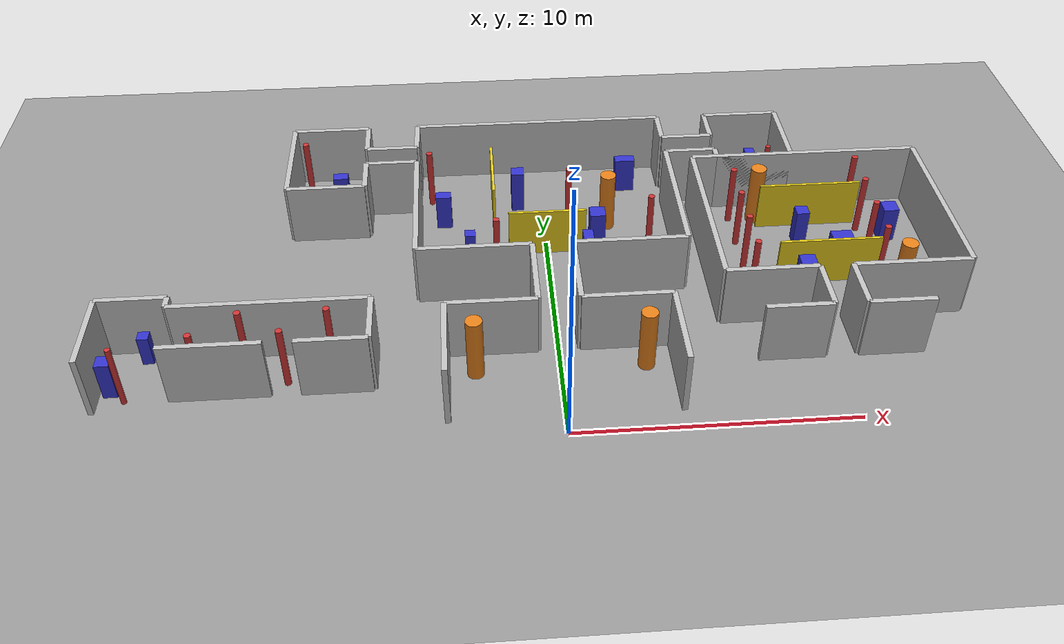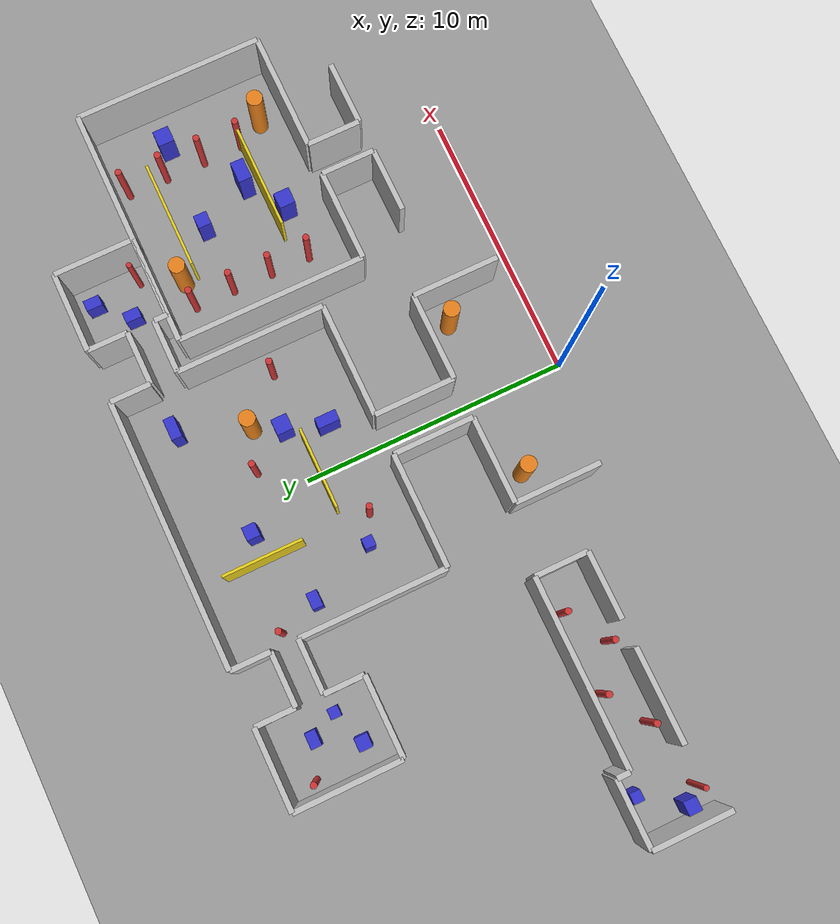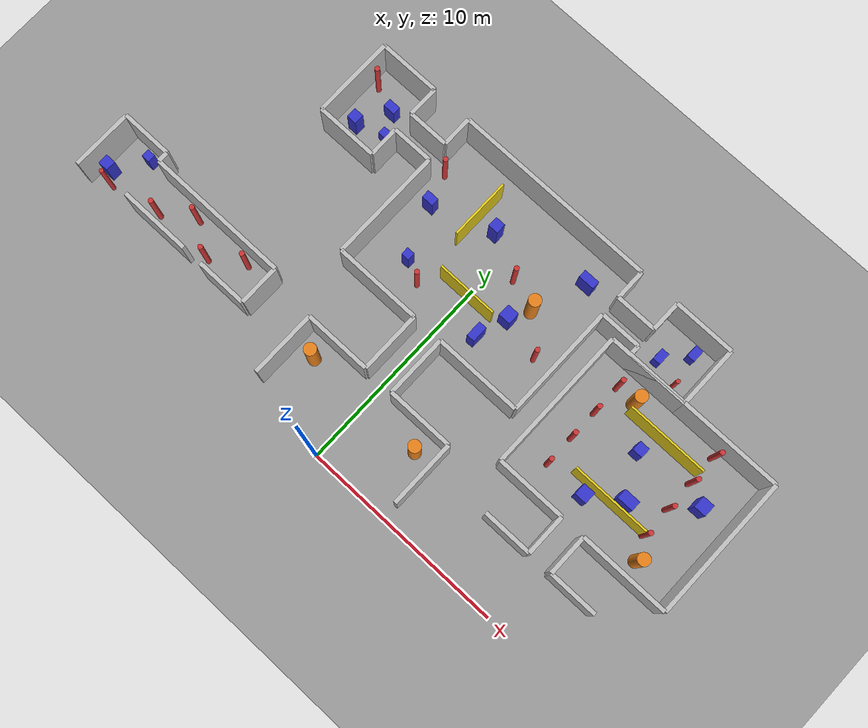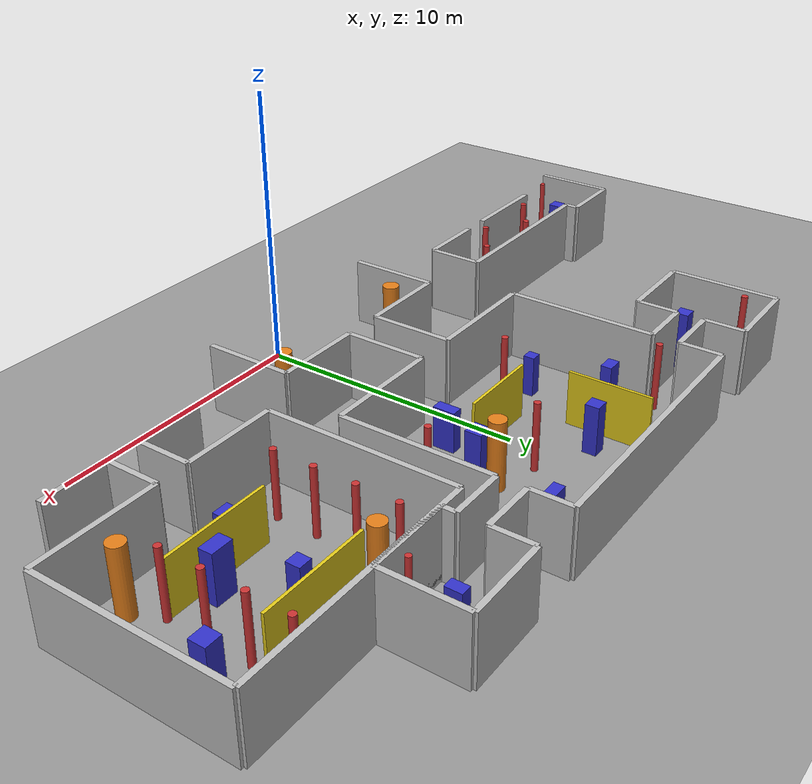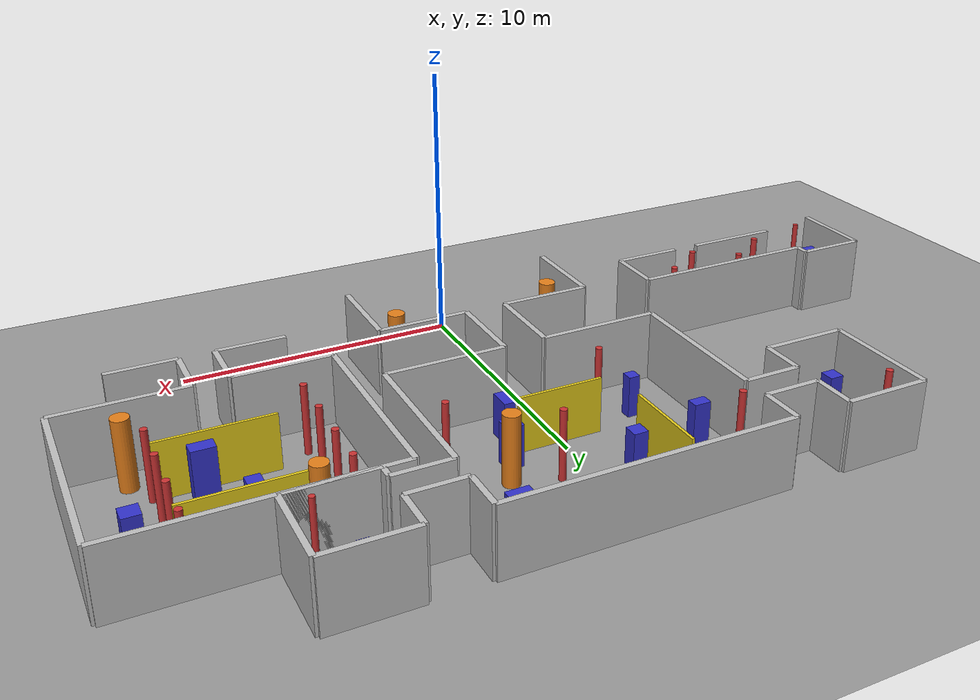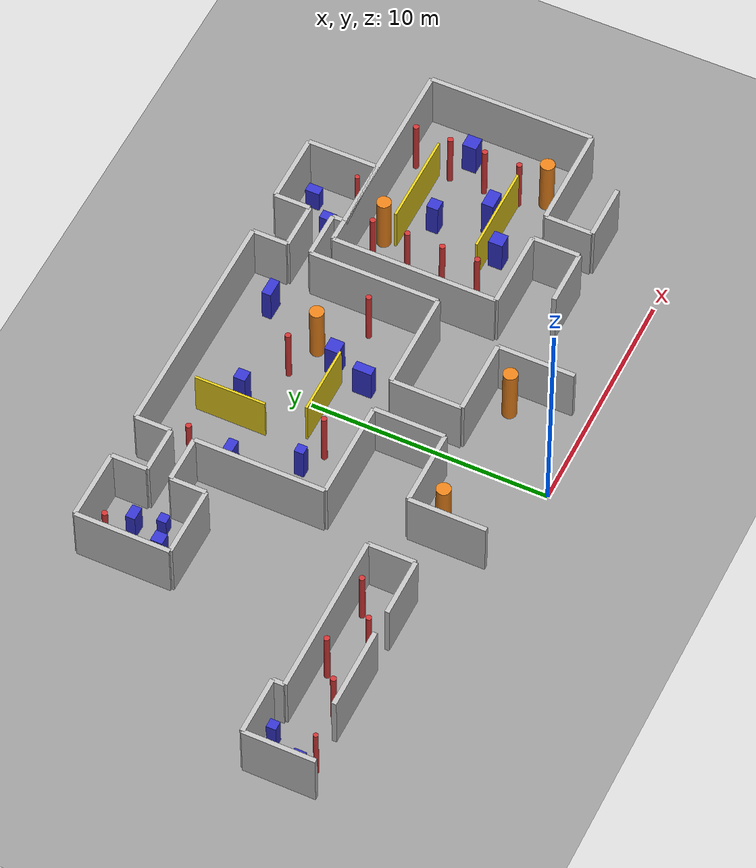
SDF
<sdf version="1.7">
 <world name="commercial_building">
  <model name="ground_plane">
   <static>true</static>
   <link name="link">
    <collision name="collision">
     <geometry><plane><normal>0 0 1</normal><size>50 50</size></plane></geometry>
     <surface><friction><ode><mu>1</mu><mu2>1</mu2></ode></friction></surface>
    </collision>
    <visual name="visual">
     <geometry><plane><normal>0 0 1</normal><size>50 50</size></plane></geometry>
     <material><ambient>0.6 0.6 0.6 1</ambient><diffuse>0.6 0.6 0.6 1</diffuse></material>
    </visual>
   </link>
  </model>
  <model name="wall_hub_n_left">
   <static>true</static>
   <pose>-2.375 4 1.25 0 0 0</pose>
   <link name="link">
    <collision name="c"><geometry><box><size>3.25 0.2 2.5</size></box></geometry></collision>
    <visual name="v">
     <geometry><box><size>3.25 0.2 2.5</size></box></geometry>
     <material><ambient>0.75 0.75 0.75 1</ambient><diffuse>0.75 0.75 0.75 1</diffuse></material>
    </visual>
   </link>
  </model>
  <model name="wall_hub_n_right">
   <static>true</static>
   <pose>2.375 4 1.25 0 0 0</pose>
   <link name="link">
    <collision name="c"><geometry><box><size>3.25 0.2 2.5</size></box></geometry></collision>
    <visual name="v">
     <geometry><box><size>3.25 0.2 2.5</size></box></geometry>
     <material><ambient>0.75 0.75 0.75 1</ambient><diffuse>0.75 0.75 0.75 1</diffuse></material>
    </visual>
   </link>
  </model>
  <model name="wall_hub_e_top">
   <static>true</static>
   <pose>4 2.375 1.25 0 0 0</pose>
   <link name="link">
    <collision name="c"><geometry><box><size>0.2 3.25 2.5</size></box></geometry></collision>
    <visual name="v">
     <geometry><box><size>0.2 3.25 2.5</size></box></geometry>
     <material><ambient>0.75 0.75 0.75 1</ambient><diffuse>0.75 0.75 0.75 1</diffuse></material>
    </visual>
   </link>
  </model>
  <model name="wall_hub_w_top">
   <static>true</static>
   <pose>-4 2.375 1.25 0 0 0</pose>
   <link name="link">
    <collision name="c"><geometry><box><size>0.2 3.25 2.5</size></box></geometry></collision>
    <visual name="v">
     <geometry><box><size>0.2 3.25 2.5</size></box></geometry>
     <material><ambient>0.75 0.75 0.75 1</ambient><diffuse>0.75 0.75 0.75 1</diffuse></material>
    </visual>
   </link>
  </model>
  <model name="wall_nhall_west">
   <static>true</static>
   <pose>-0.75 5.5 1.25 0 0 0</pose>
   <link name="link">
    <collision name="c"><geometry><box><size>0.2 3.0 2.5</size></box></geometry></collision>
    <visual name="v">
     <geometry><box><size>0.2 3.0 2.5</size></box></geometry>
     <material><ambient>0.75 0.75 0.75 1</ambient><diffuse>0.75 0.75 0.75 1</diffuse></material>
    </visual>
   </link>
  </model>
  <model name="wall_nhall_east">
   <static>true</static>
   <pose>0.75 5.5 1.25 0 0 0</pose>
   <link name="link">
    <collision name="c"><geometry><box><size>0.2 3.0 2.5</size></box></geometry></collision>
    <visual name="v">
     <geometry><box><size>0.2 3.0 2.5</size></box></geometry>
     <material><ambient>0.75 0.75 0.75 1</ambient><diffuse>0.75 0.75 0.75 1</diffuse></material>
    </visual>
   </link>
  </model>
  <model name="wall_A_s_left">
   <static>true</static>
   <pose>-2.875 7 1.25 0 0 0</pose>
   <link name="link">
    <collision name="c"><geometry><box><size>4.25 0.2 2.5</size></box></geometry></collision>
    <visual name="v">
     <geometry><box><size>4.25 0.2 2.5</size></box></geometry>
     <material><ambient>0.75 0.75 0.75 1</ambient><diffuse>0.75 0.75 0.75 1</diffuse></material>
    </visual>
   </link>
  </model>
  <model name="wall_A_s_right">
   <static>true</static>
   <pose>2.875 7 1.25 0 0 0</pose>
   <link name="link">
    <collision name="c"><geometry><box><size>4.25 0.2 2.5</size></box></geometry></collision>
    <visual name="v">
     <geometry><box><size>4.25 0.2 2.5</size></box></geometry>
     <material><ambient>0.75 0.75 0.75 1</ambient><diffuse>0.75 0.75 0.75 1</diffuse></material>
    </visual>
   </link>
  </model>
  <model name="wall_A_n">
   <static>true</static>
   <pose>0 15 1.25 0 0 0</pose>
   <link name="link">
    <collision name="c"><geometry><box><size>10.0 0.2 2.5</size></box></geometry></collision>
    <visual name="v">
     <geometry><box><size>10.0 0.2 2.5</size></box></geometry>
     <material><ambient>0.75 0.75 0.75 1</ambient><diffuse>0.75 0.75 0.75 1</diffuse></material>
    </visual>
   </link>
  </model>
  <model name="wall_A_e_bot">
   <static>true</static>
   <pose>5 9.75 1.25 0 0 0</pose>
   <link name="link">
    <collision name="c"><geometry><box><size>0.2 5.5 2.5</size></box></geometry></collision>
    <visual name="v">
     <geometry><box><size>0.2 5.5 2.5</size></box></geometry>
     <material><ambient>0.75 0.75 0.75 1</ambient><diffuse>0.75 0.75 0.75 1</diffuse></material>
    </visual>
   </link>
  </model>
  <model name="wall_A_e_top">
   <static>true</static>
   <pose>5 14.25 1.25 0 0 0</pose>
   <link name="link">
    <collision name="c"><geometry><box><size>0.2 1.5 2.5</size></box></geometry></collision>
    <visual name="v">
     <geometry><box><size>0.2 1.5 2.5</size></box></geometry>
     <material><ambient>0.75 0.75 0.75 1</ambient><diffuse>0.75 0.75 0.75 1</diffuse></material>
    </visual>
   </link>
  </model>
  <model name="wall_A_w_bot">
   <static>true</static>
   <pose>-5 9.75 1.25 0 0 0</pose>
   <link name="link">
    <collision name="c"><geometry><box><size>0.2 5.5 2.5</size></box></geometry></collision>
    <visual name="v">
     <geometry><box><size>0.2 5.5 2.5</size></box></geometry>
     <material><ambient>0.75 0.75 0.75 1</ambient><diffuse>0.75 0.75 0.75 1</diffuse></material>
    </visual>
   </link>
  </model>
  <model name="wall_A_w_top">
   <static>true</static>
   <pose>-5 14.25 1.25 0 0 0</pose>
   <link name="link">
    <collision name="c"><geometry><box><size>0.2 1.5 2.5</size></box></geometry></collision>
    <visual name="v">
     <geometry><box><size>0.2 1.5 2.5</size></box></geometry>
     <material><ambient>0.75 0.75 0.75 1</ambient><diffuse>0.75 0.75 0.75 1</diffuse></material>
    </visual>
   </link>
  </model>
  <model name="wall_Bhall_s">
   <static>true</static>
   <pose>6 12.5 1.25 0 0 0</pose>
   <link name="link">
    <collision name="c"><geometry><box><size>2.0 0.2 2.5</size></box></geometry></collision>
    <visual name="v">
     <geometry><box><size>2.0 0.2 2.5</size></box></geometry>
     <material><ambient>0.75 0.75 0.75 1</ambient><diffuse>0.75 0.75 0.75 1</diffuse></material>
    </visual>
   </link>
  </model>
  <model name="wall_Bhall_n">
   <static>true</static>
   <pose>6 13.5 1.25 0 0 0</pose>
   <link name="link">
    <collision name="c"><geometry><box><size>2.0 0.2 2.5</size></box></geometry></collision>
    <visual name="v">
     <geometry><box><size>2.0 0.2 2.5</size></box></geometry>
     <material><ambient>0.75 0.75 0.75 1</ambient><diffuse>0.75 0.75 0.75 1</diffuse></material>
    </visual>
   </link>
  </model>
  <model name="wall_B_w_bot">
   <static>true</static>
   <pose>7 12.25 1.25 0 0 0</pose>
   <link name="link">
    <collision name="c"><geometry><box><size>0.2 0.5 2.5</size></box></geometry></collision>
    <visual name="v">
     <geometry><box><size>0.2 0.5 2.5</size></box></geometry>
     <material><ambient>0.75 0.75 0.75 1</ambient><diffuse>0.75 0.75 0.75 1</diffuse></material>
    </visual>
   </link>
  </model>
  <model name="wall_B_w_top">
   <static>true</static>
   <pose>7 14.25 1.25 0 0 0</pose>
   <link name="link">
    <collision name="c"><geometry><box><size>0.2 1.5 2.5</size></box></geometry></collision>
    <visual name="v">
     <geometry><box><size>0.2 1.5 2.5</size></box></geometry>
     <material><ambient>0.75 0.75 0.75 1</ambient><diffuse>0.75 0.75 0.75 1</diffuse></material>
    </visual>
   </link>
  </model>
  <model name="wall_B_e">
   <static>true</static>
   <pose>10 13.5 1.25 0 0 0</pose>
   <link name="link">
    <collision name="c"><geometry><box><size>0.2 3.0 2.5</size></box></geometry></collision>
    <visual name="v">
     <geometry><box><size>0.2 3.0 2.5</size></box></geometry>
     <material><ambient>0.75 0.75 0.75 1</ambient><diffuse>0.75 0.75 0.75 1</diffuse></material>
    </visual>
   </link>
  </model>
  <model name="wall_B_s">
   <static>true</static>
   <pose>8.5 12 1.25 0 0 0</pose>
   <link name="link">
    <collision name="c"><geometry><box><size>3.0 0.2 2.5</size></box></geometry></collision>
    <visual name="v">
     <geometry><box><size>3.0 0.2 2.5</size></box></geometry>
     <material><ambient>0.75 0.75 0.75 1</ambient><diffuse>0.75 0.75 0.75 1</diffuse></material>
    </visual>
   </link>
  </model>
  <model name="wall_B_n">
   <static>true</static>
   <pose>8.5 15 1.25 0 0 0</pose>
   <link name="link">
    <collision name="c"><geometry><box><size>3.0 0.2 2.5</size></box></geometry></collision>
    <visual name="v">
     <geometry><box><size>3.0 0.2 2.5</size></box></geometry>
     <material><ambient>0.75 0.75 0.75 1</ambient><diffuse>0.75 0.75 0.75 1</diffuse></material>
    </visual>
   </link>
  </model>
  <model name="wall_Chall_s">
   <static>true</static>
   <pose>-6 12.5 1.25 0 0 0</pose>
   <link name="link">
    <collision name="c"><geometry><box><size>2.0 0.2 2.5</size></box></geometry></collision>
    <visual name="v">
     <geometry><box><size>2.0 0.2 2.5</size></box></geometry>
     <material><ambient>0.75 0.75 0.75 1</ambient><diffuse>0.75 0.75 0.75 1</diffuse></material>
    </visual>
   </link>
  </model>
  <model name="wall_Chall_n">
   <static>true</static>
   <pose>-6 13.5 1.25 0 0 0</pose>
   <link name="link">
    <collision name="c"><geometry><box><size>2.0 0.2 2.5</size></box></geometry></collision>
    <visual name="v">
     <geometry><box><size>2.0 0.2 2.5</size></box></geometry>
     <material><ambient>0.75 0.75 0.75 1</ambient><diffuse>0.75 0.75 0.75 1</diffuse></material>
    </visual>
   </link>
  </model>
  <model name="wall_C_e_bot">
   <static>true</static>
   <pose>-7 11.75 1.25 0 0 0</pose>
   <link name="link">
    <collision name="c"><geometry><box><size>0.2 1.5 2.5</size></box></geometry></collision>
    <visual name="v">
     <geometry><box><size>0.2 1.5 2.5</size></box></geometry>
     <material><ambient>0.75 0.75 0.75 1</ambient><diffuse>0.75 0.75 0.75 1</diffuse></material>
    </visual>
   </link>
  </model>
  <model name="wall_C_e_top">
   <static>true</static>
   <pose>-7 14.25 1.25 0 0 0</pose>
   <link name="link">
    <collision name="c"><geometry><box><size>0.2 1.5 2.5</size></box></geometry></collision>
    <visual name="v">
     <geometry><box><size>0.2 1.5 2.5</size></box></geometry>
     <material><ambient>0.75 0.75 0.75 1</ambient><diffuse>0.75 0.75 0.75 1</diffuse></material>
    </visual>
   </link>
  </model>
  <model name="wall_C_w">
   <static>true</static>
   <pose>-10 13 1.25 0 0 0</pose>
   <link name="link">
    <collision name="c"><geometry><box><size>0.2 4.0 2.5</size></box></geometry></collision>
    <visual name="v">
     <geometry><box><size>0.2 4.0 2.5</size></box></geometry>
     <material><ambient>0.75 0.75 0.75 1</ambient><diffuse>0.75 0.75 0.75 1</diffuse></material>
    </visual>
   </link>
  </model>
  <model name="wall_C_s">
   <static>true</static>
   <pose>-8.5 11 1.25 0 0 0</pose>
   <link name="link">
    <collision name="c"><geometry><box><size>3.0 0.2 2.5</size></box></geometry></collision>
    <visual name="v">
     <geometry><box><size>3.0 0.2 2.5</size></box></geometry>
     <material><ambient>0.75 0.75 0.75 1</ambient><diffuse>0.75 0.75 0.75 1</diffuse></material>
    </visual>
   </link>
  </model>
  <model name="wall_C_n">
   <static>true</static>
   <pose>-8.5 15 1.25 0 0 0</pose>
   <link name="link">
    <collision name="c"><geometry><box><size>3.0 0.2 2.5</size></box></geometry></collision>
    <visual name="v">
     <geometry><box><size>3.0 0.2 2.5</size></box></geometry>
     <material><ambient>0.75 0.75 0.75 1</ambient><diffuse>0.75 0.75 0.75 1</diffuse></material>
    </visual>
   </link>
  </model>
  <model name="wall_G_n_left">
   <static>true</static>
   <pose>8.2 3 1.25 0 0 0</pose>
   <link name="link">
    <collision name="c"><geometry><box><size>2.4 0.2 2.5</size></box></geometry></collision>
    <visual name="v">
     <geometry><box><size>2.4 0.2 2.5</size></box></geometry>
     <material><ambient>0.75 0.75 0.75 1</ambient><diffuse>0.75 0.75 0.75 1</diffuse></material>
    </visual>
   </link>
  </model>
  <model name="wall_G_n_right">
   <static>true</static>
   <pose>11.8 3 1.25 0 0 0</pose>
   <link name="link">
    <collision name="c"><geometry><box><size>2.4 0.2 2.5</size></box></geometry></collision>
    <visual name="v">
     <geometry><box><size>2.4 0.2 2.5</size></box></geometry>
     <material><ambient>0.75 0.75 0.75 1</ambient><diffuse>0.75 0.75 0.75 1</diffuse></material>
    </visual>
   </link>
  </model>
  <model name="wall_Ihall_w">
   <static>true</static>
   <pose>9.4 4 1.25 0 0 0</pose>
   <link name="link">
    <collision name="c"><geometry><box><size>0.2 2.0 2.5</size></box></geometry></collision>
    <visual name="v">
     <geometry><box><size>0.2 2.0 2.5</size></box></geometry>
     <material><ambient>0.75 0.75 0.75 1</ambient><diffuse>0.75 0.75 0.75 1</diffuse></material>
    </visual>
   </link>
  </model>
  <model name="wall_Ihall_e">
   <static>true</static>
   <pose>10.6 4 1.25 0 0 0</pose>
   <link name="link">
    <collision name="c"><geometry><box><size>0.2 2.0 2.5</size></box></geometry></collision>
    <visual name="v">
     <geometry><box><size>0.2 2.0 2.5</size></box></geometry>
     <material><ambient>0.75 0.75 0.75 1</ambient><diffuse>0.75 0.75 0.75 1</diffuse></material>
    </visual>
   </link>
  </model>
  <model name="wall_I_s_left">
   <static>true</static>
   <pose>7.7 5 1.25 0 0 0</pose>
   <link name="link">
    <collision name="c"><geometry><box><size>3.4 0.2 2.5</size></box></geometry></collision>
    <visual name="v">
     <geometry><box><size>3.4 0.2 2.5</size></box></geometry>
     <material><ambient>0.75 0.75 0.75 1</ambient><diffuse>0.75 0.75 0.75 1</diffuse></material>
    </visual>
   </link>
  </model>
  <model name="wall_I_s_right">
   <static>true</static>
   <pose>12.8 5 1.25 0 0 0</pose>
   <link name="link">
    <collision name="c"><geometry><box><size>4.4 0.2 2.5</size></box></geometry></collision>
    <visual name="v">
     <geometry><box><size>4.4 0.2 2.5</size></box></geometry>
     <material><ambient>0.75 0.75 0.75 1</ambient><diffuse>0.75 0.75 0.75 1</diffuse></material>
    </visual>
   </link>
  </model>
  <model name="wall_I_n">
   <static>true</static>
   <pose>10.5 12 1.25 0 0 0</pose>
   <link name="link">
    <collision name="c"><geometry><box><size>9.0 0.2 2.5</size></box></geometry></collision>
    <visual name="v">
     <geometry><box><size>9.0 0.2 2.5</size></box></geometry>
     <material><ambient>0.75 0.75 0.75 1</ambient><diffuse>0.75 0.75 0.75 1</diffuse></material>
    </visual>
   </link>
  </model>
  <model name="wall_I_e">
   <static>true</static>
   <pose>15 8.5 1.25 0 0 0</pose>
   <link name="link">
    <collision name="c"><geometry><box><size>0.2 7.0 2.5</size></box></geometry></collision>
    <visual name="v">
     <geometry><box><size>0.2 7.0 2.5</size></box></geometry>
     <material><ambient>0.75 0.75 0.75 1</ambient><diffuse>0.75 0.75 0.75 1</diffuse></material>
    </visual>
   </link>
  </model>
  <model name="wall_I_w">
   <static>true</static>
   <pose>6 8.5 1.25 0 0 0</pose>
   <link name="link">
    <collision name="c"><geometry><box><size>0.2 7.0 2.5</size></box></geometry></collision>
    <visual name="v">
     <geometry><box><size>0.2 7.0 2.5</size></box></geometry>
     <material><ambient>0.75 0.75 0.75 1</ambient><diffuse>0.75 0.75 0.75 1</diffuse></material>
    </visual>
   </link>
  </model>
  <model name="wall_JK_s_left">
   <static>true</static>
   <pose>-11.75 2.5 1.25 0 0 0</pose>
   <link name="link">
    <collision name="c"><geometry><box><size>3.5 0.2 2.5</size></box></geometry></collision>
    <visual name="v">
     <geometry><box><size>3.5 0.2 2.5</size></box></geometry>
     <material><ambient>0.75 0.75 0.75 1</ambient><diffuse>0.75 0.75 0.75 1</diffuse></material>
    </visual>
   </link>
  </model>
  <model name="wall_JK_s_right">
   <static>true</static>
   <pose>-7.75 2.5 1.25 0 0 0</pose>
   <link name="link">
    <collision name="c"><geometry><box><size>2.5 0.2 2.5</size></box></geometry></collision>
    <visual name="v">
     <geometry><box><size>2.5 0.2 2.5</size></box></geometry>
     <material><ambient>0.75 0.75 0.75 1</ambient><diffuse>0.75 0.75 0.75 1</diffuse></material>
    </visual>
   </link>
  </model>
  <model name="wall_K_n">
   <static>true</static>
   <pose>-10 4.5 1.25 0 0 0</pose>
   <link name="link">
    <collision name="c"><geometry><box><size>7.0 0.2 2.5</size></box></geometry></collision>
    <visual name="v">
     <geometry><box><size>7.0 0.2 2.5</size></box></geometry>
     <material><ambient>0.75 0.75 0.75 1</ambient><diffuse>0.75 0.75 0.75 1</diffuse></material>
    </visual>
   </link>
  </model>
  <model name="wall_K_e">
   <static>true</static>
   <pose>-6.5 3.5 1.25 0 0 0</pose>
   <link name="link">
    <collision name="c"><geometry><box><size>0.2 2.0 2.5</size></box></geometry></collision>
    <visual name="v">
     <geometry><box><size>0.2 2.0 2.5</size></box></geometry>
     <material><ambient>0.75 0.75 0.75 1</ambient><diffuse>0.75 0.75 0.75 1</diffuse></material>
    </visual>
   </link>
  </model>
  <model name="wall_L_e_top">
   <static>true</static>
   <pose>-13.5 4.75 1.25 0 0 0</pose>
   <link name="link">
    <collision name="c"><geometry><box><size>0.2 0.5 2.5</size></box></geometry></collision>
    <visual name="v">
     <geometry><box><size>0.2 0.5 2.5</size></box></geometry>
     <material><ambient>0.75 0.75 0.75 1</ambient><diffuse>0.75 0.75 0.75 1</diffuse></material>
    </visual>
   </link>
  </model>
  <model name="wall_L_w">
   <static>true</static>
   <pose>-16 3.5 1.25 0 0 0</pose>
   <link name="link">
    <collision name="c"><geometry><box><size>0.2 3.0 2.5</size></box></geometry></collision>
    <visual name="v">
     <geometry><box><size>0.2 3.0 2.5</size></box></geometry>
     <material><ambient>0.75 0.75 0.75 1</ambient><diffuse>0.75 0.75 0.75 1</diffuse></material>
    </visual>
   </link>
  </model>
  <model name="wall_L_n">
   <static>true</static>
   <pose>-14.75 5.0 1.25 0 0 0</pose>
   <link name="link">
    <collision name="c"><geometry><box><size>2.5 0.2 2.5</size></box></geometry></collision>
    <visual name="v">
     <geometry><box><size>2.5 0.2 2.5</size></box></geometry>
     <material><ambient>0.75 0.75 0.75 1</ambient><diffuse>0.75 0.75 0.75 1</diffuse></material>
    </visual>
   </link>
  </model>
  <model name="obs_hub_post_ne">
   <static>true</static>
   <pose>3 3 1.25 0 0 0</pose>
   <link name="link">
    <collision name="c">
     <geometry><cylinder><radius>0.3</radius><length>2.5</length></cylinder></geometry>
    </collision>
    <visual name="v">
     <geometry><cylinder><radius>0.3</radius><length>2.5</length></cylinder></geometry>
     <material><ambient>0.9 0.5 0.1 1</ambient><diffuse>0.9 0.5 0.1 1</diffuse></material>
    </visual>
   </link>
  </model>
  <model name="obs_hub_post_nw">
   <static>true</static>
   <pose>-3 3 1.25 0 0 0</pose>
   <link name="link">
    <collision name="c">
     <geometry><cylinder><radius>0.3</radius><length>2.5</length></cylinder></geometry>
    </collision>
    <visual name="v">
     <geometry><cylinder><radius>0.3</radius><length>2.5</length></cylinder></geometry>
     <material><ambient>0.9 0.5 0.1 1</ambient><diffuse>0.9 0.5 0.1 1</diffuse></material>
    </visual>
   </link>
  </model>
  <model name="obs_A_box1">
   <static>true</static>
   <pose>-3 9 0.75 0 0 0</pose>
   <link name="link">
    <collision name="c"><geometry><box><size>0.4 0.4 1.5</size></box></geometry></collision>
    <visual name="v">
     <geometry><box><size>0.4 0.4 1.5</size></box></geometry>
     <material><ambient>0.2 0.2 0.8 1</ambient><diffuse>0.2 0.2 0.8 1</diffuse></material>
    </visual>
   </link>
  </model>
  <model name="obs_A_box2">
   <static>true</static>
   <pose>2 10 0.75 0 0 0</pose>
   <link name="link">
    <collision name="c"><geometry><box><size>0.6 0.6 1.5</size></box></geometry></collision>
    <visual name="v">
     <geometry><box><size>0.6 0.6 1.5</size></box></geometry>
     <material><ambient>0.2 0.2 0.8 1</ambient><diffuse>0.2 0.2 0.8 1</diffuse></material>
    </visual>
   </link>
  </model>
  <model name="obs_A_box3">
   <static>true</static>
   <pose>-1 12.5 0.9 0 0 0</pose>
   <link name="link">
    <collision name="c"><geometry><box><size>0.5 0.5 1.8</size></box></geometry></collision>
    <visual name="v">
     <geometry><box><size>0.5 0.5 1.8</size></box></geometry>
     <material><ambient>0.2 0.2 0.8 1</ambient><diffuse>0.2 0.2 0.8 1</diffuse></material>
    </visual>
   </link>
  </model>
  <model name="obs_A_box4">
   <static>true</static>
   <pose>3.5 13.5 0.75 0 0 0</pose>
   <link name="link">
    <collision name="c"><geometry><box><size>0.8 0.4 1.5</size></box></geometry></collision>
    <visual name="v">
     <geometry><box><size>0.8 0.4 1.5</size></box></geometry>
     <material><ambient>0.2 0.2 0.8 1</ambient><diffuse>0.2 0.2 0.8 1</diffuse></material>
    </visual>
   </link>
  </model>
  <model name="obs_A_box5">
   <static>true</static>
   <pose>-4 11.5 0.75 0 0 0</pose>
   <link name="link">
    <collision name="c"><geometry><box><size>0.6 0.4 1.5</size></box></geometry></collision>
    <visual name="v">
     <geometry><box><size>0.6 0.4 1.5</size></box></geometry>
     <material><ambient>0.2 0.2 0.8 1</ambient><diffuse>0.2 0.2 0.8 1</diffuse></material>
    </visual>
   </link>
  </model>
  <model name="obs_A_box6">
   <static>true</static>
   <pose>1.5 8.5 0.75 0 0 0</pose>
   <link name="link">
    <collision name="c"><geometry><box><size>0.4 0.8 1.5</size></box></geometry></collision>
    <visual name="v">
     <geometry><box><size>0.4 0.8 1.5</size></box></geometry>
     <material><ambient>0.2 0.2 0.8 1</ambient><diffuse>0.2 0.2 0.8 1</diffuse></material>
    </visual>
   </link>
  </model>
  <model name="obs_A_cyl1">
   <static>true</static>
   <pose>-2 8.5 1.25 0 0 0</pose>
   <link name="link">
    <collision name="c">
     <geometry><cylinder><radius>0.12</radius><length>2.5</length></cylinder></geometry>
    </collision>
    <visual name="v">
     <geometry><cylinder><radius>0.12</radius><length>2.5</length></cylinder></geometry>
     <material><ambient>0.8 0.2 0.2 1</ambient><diffuse>0.8 0.2 0.2 1</diffuse></material>
    </visual>
   </link>
  </model>
  <model name="obs_A_cyl2">
   <static>true</static>
   <pose>1 11.5 1.25 0 0 0</pose>
   <link name="link">
    <collision name="c">
     <geometry><cylinder><radius>0.12</radius><length>2.5</length></cylinder></geometry>
    </collision>
    <visual name="v">
     <geometry><cylinder><radius>0.12</radius><length>2.5</length></cylinder></geometry>
     <material><ambient>0.8 0.2 0.2 1</ambient><diffuse>0.8 0.2 0.2 1</diffuse></material>
    </visual>
   </link>
  </model>
  <model name="obs_A_cyl3">
   <static>true</static>
   <pose>4 9.5 1.25 0 0 0</pose>
   <link name="link">
    <collision name="c">
     <geometry><cylinder><radius>0.12</radius><length>2.5</length></cylinder></geometry>
    </collision>
    <visual name="v">
     <geometry><cylinder><radius>0.12</radius><length>2.5</length></cylinder></geometry>
     <material><ambient>0.8 0.2 0.2 1</ambient><diffuse>0.8 0.2 0.2 1</diffuse></material>
    </visual>
   </link>
  </model>
  <model name="obs_A_cyl4">
   <static>true</static>
   <pose>-4.5 13 1.25 0 0 0</pose>
   <link name="link">
    <collision name="c">
     <geometry><cylinder><radius>0.12</radius><length>2.5</length></cylinder></geometry>
    </collision>
    <visual name="v">
     <geometry><cylinder><radius>0.12</radius><length>2.5</length></cylinder></geometry>
     <material><ambient>0.8 0.2 0.2 1</ambient><diffuse>0.8 0.2 0.2 1</diffuse></material>
    </visual>
   </link>
  </model>
  <model name="obs_A_part1">
   <static>true</static>
   <pose>0 9.5 1.0 0 0 0</pose>
   <link name="link">
    <collision name="c"><geometry><box><size>3.0 0.1 2.0</size></box></geometry></collision>
    <visual name="v">
     <geometry><box><size>3.0 0.1 2.0</size></box></geometry>
     <material><ambient>0.9 0.8 0.1 1</ambient><diffuse>0.9 0.8 0.1 1</diffuse></material>
    </visual>
   </link>
  </model>
  <model name="obs_A_part2">
   <static>true</static>
   <pose>-2 12.5 1.0 0 0 1.5708</pose>
   <link name="link">
    <collision name="c"><geometry><box><size>3.0 0.1 2.0</size></box></geometry></collision>
    <visual name="v">
     <geometry><box><size>3.0 0.1 2.0</size></box></geometry>
     <material><ambient>0.9 0.8 0.1 1</ambient><diffuse>0.9 0.8 0.1 1</diffuse></material>
    </visual>
   </link>
  </model>
  <model name="obs_A_post">
   <static>true</static>
   <pose>2.5 11 1.25 0 0 0</pose>
   <link name="link">
    <collision name="c">
     <geometry><cylinder><radius>0.3</radius><length>2.5</length></cylinder></geometry>
    </collision>
    <visual name="v">
     <geometry><cylinder><radius>0.3</radius><length>2.5</length></cylinder></geometry>
     <material><ambient>0.9 0.5 0.1 1</ambient><diffuse>0.9 0.5 0.1 1</diffuse></material>
    </visual>
   </link>
  </model>
  <model name="obs_B_box1">
   <static>true</static>
   <pose>8.0 13.2 0.5 0 0 0</pose>
   <link name="link">
    <collision name="c"><geometry><box><size>0.4 0.6 1.0</size></box></geometry></collision>
    <visual name="v">
     <geometry><box><size>0.4 0.6 1.0</size></box></geometry>
     <material><ambient>0.2 0.2 0.8 1</ambient><diffuse>0.2 0.2 0.8 1</diffuse></material>
    </visual>
   </link>
  </model>
  <model name="obs_B_box2">
   <static>true</static>
   <pose>9.0 14.3 0.5 0 0 0</pose>
   <link name="link">
    <collision name="c"><geometry><box><size>0.4 0.6 1.0</size></box></geometry></collision>
    <visual name="v">
     <geometry><box><size>0.4 0.6 1.0</size></box></geometry>
     <material><ambient>0.2 0.2 0.8 1</ambient><diffuse>0.2 0.2 0.8 1</diffuse></material>
    </visual>
   </link>
  </model>
  <model name="obs_B_cyl1">
   <static>true</static>
   <pose>9.2 12.5 1.25 0 0 0</pose>
   <link name="link">
    <collision name="c">
     <geometry><cylinder><radius>0.1</radius><length>2.5</length></cylinder></geometry>
    </collision>
    <visual name="v">
     <geometry><cylinder><radius>0.1</radius><length>2.5</length></cylinder></geometry>
     <material><ambient>0.8 0.2 0.2 1</ambient><diffuse>0.8 0.2 0.2 1</diffuse></material>
    </visual>
   </link>
  </model>
  <model name="obs_C_box1">
   <static>true</static>
   <pose>-9 12 0.75 0 0 0</pose>
   <link name="link">
    <collision name="c"><geometry><box><size>0.5 0.5 1.5</size></box></geometry></collision>
    <visual name="v">
     <geometry><box><size>0.5 0.5 1.5</size></box></geometry>
     <material><ambient>0.2 0.2 0.8 1</ambient><diffuse>0.2 0.2 0.8 1</diffuse></material>
    </visual>
   </link>
  </model>
  <model name="obs_C_box2">
   <static>true</static>
   <pose>-8.2 13.5 0.6 0 0 0</pose>
   <link name="link">
    <collision name="c"><geometry><box><size>0.6 0.4 1.2</size></box></geometry></collision>
    <visual name="v">
     <geometry><box><size>0.6 0.4 1.2</size></box></geometry>
     <material><ambient>0.2 0.2 0.8 1</ambient><diffuse>0.2 0.2 0.8 1</diffuse></material>
    </visual>
   </link>
  </model>
  <model name="obs_C_box3">
   <static>true</static>
   <pose>-7.7 12.5 0.4 0 0 0</pose>
   <link name="link">
    <collision name="c"><geometry><box><size>0.4 0.4 0.8</size></box></geometry></collision>
    <visual name="v">
     <geometry><box><size>0.4 0.4 0.8</size></box></geometry>
     <material><ambient>0.2 0.2 0.8 1</ambient><diffuse>0.2 0.2 0.8 1</diffuse></material>
    </visual>
   </link>
  </model>
  <model name="obs_C_cyl1">
   <static>true</static>
   <pose>-9.5 14 1.25 0 0 0</pose>
   <link name="link">
    <collision name="c">
     <geometry><cylinder><radius>0.12</radius><length>2.5</length></cylinder></geometry>
    </collision>
    <visual name="v">
     <geometry><cylinder><radius>0.12</radius><length>2.5</length></cylinder></geometry>
     <material><ambient>0.8 0.2 0.2 1</ambient><diffuse>0.8 0.2 0.2 1</diffuse></material>
    </visual>
   </link>
  </model>
  <model name="obs_I_cyl1">
   <static>true</static>
   <pose>7.5 6.5 1.25 0 0 0</pose>
   <link name="link">
    <collision name="c">
     <geometry><cylinder><radius>0.12</radius><length>2.5</length></cylinder></geometry>
    </collision>
    <visual name="v">
     <geometry><cylinder><radius>0.12</radius><length>2.5</length></cylinder></geometry>
     <material><ambient>0.8 0.2 0.2 1</ambient><diffuse>0.8 0.2 0.2 1</diffuse></material>
    </visual>
   </link>
  </model>
  <model name="obs_I_cyl2">
   <static>true</static>
   <pose>7.5 8.0 1.25 0 0 0</pose>
   <link name="link">
    <collision name="c">
     <geometry><cylinder><radius>0.12</radius><length>2.5</length></cylinder></geometry>
    </collision>
    <visual name="v">
     <geometry><cylinder><radius>0.12</radius><length>2.5</length></cylinder></geometry>
     <material><ambient>0.8 0.2 0.2 1</ambient><diffuse>0.8 0.2 0.2 1</diffuse></material>
    </visual>
   </link>
  </model>
  <model name="obs_I_cyl3">
   <static>true</static>
   <pose>7.5 9.5 1.25 0 0 0</pose>
   <link name="link">
    <collision name="c">
     <geometry><cylinder><radius>0.12</radius><length>2.5</length></cylinder></geometry>
    </collision>
    <visual name="v">
     <geometry><cylinder><radius>0.12</radius><length>2.5</length></cylinder></geometry>
     <material><ambient>0.8 0.2 0.2 1</ambient><diffuse>0.8 0.2 0.2 1</diffuse></material>
    </visual>
   </link>
  </model>
  <model name="obs_I_cyl4">
   <static>true</static>
   <pose>7.5 11.0 1.25 0 0 0</pose>
   <link name="link">
    <collision name="c">
     <geometry><cylinder><radius>0.12</radius><length>2.5</length></cylinder></geometry>
    </collision>
    <visual name="v">
     <geometry><cylinder><radius>0.12</radius><length>2.5</length></cylinder></geometry>
     <material><ambient>0.8 0.2 0.2 1</ambient><diffuse>0.8 0.2 0.2 1</diffuse></material>
    </visual>
   </link>
  </model>
  <model name="obs_I_cyl5">
   <static>true</static>
   <pose>12.5 7.0 1.25 0 0 0</pose>
   <link name="link">
    <collision name="c">
     <geometry><cylinder><radius>0.12</radius><length>2.5</length></cylinder></geometry>
    </collision>
    <visual name="v">
     <geometry><cylinder><radius>0.12</radius><length>2.5</length></cylinder></geometry>
     <material><ambient>0.8 0.2 0.2 1</ambient><diffuse>0.8 0.2 0.2 1</diffuse></material>
    </visual>
   </link>
  </model>
  <model name="obs_I_cyl6">
   <static>true</static>
   <pose>12.5 8.5 1.25 0 0 0</pose>
   <link name="link">
    <collision name="c">
     <geometry><cylinder><radius>0.12</radius><length>2.5</length></cylinder></geometry>
    </collision>
    <visual name="v">
     <geometry><cylinder><radius>0.12</radius><length>2.5</length></cylinder></geometry>
     <material><ambient>0.8 0.2 0.2 1</ambient><diffuse>0.8 0.2 0.2 1</diffuse></material>
    </visual>
   </link>
  </model>
  <model name="obs_I_cyl7">
   <static>true</static>
   <pose>12.5 10.0 1.25 0 0 0</pose>
   <link name="link">
    <collision name="c">
     <geometry><cylinder><radius>0.12</radius><length>2.5</length></cylinder></geometry>
    </collision>
    <visual name="v">
     <geometry><cylinder><radius>0.12</radius><length>2.5</length></cylinder></geometry>
     <material><ambient>0.8 0.2 0.2 1</ambient><diffuse>0.8 0.2 0.2 1</diffuse></material>
    </visual>
   </link>
  </model>
  <model name="obs_I_cyl8">
   <static>true</static>
   <pose>12.5 11.5 1.25 0 0 0</pose>
   <link name="link">
    <collision name="c">
     <geometry><cylinder><radius>0.12</radius><length>2.5</length></cylinder></geometry>
    </collision>
    <visual name="v">
     <geometry><cylinder><radius>0.12</radius><length>2.5</length></cylinder></geometry>
     <material><ambient>0.8 0.2 0.2 1</ambient><diffuse>0.8 0.2 0.2 1</diffuse></material>
    </visual>
   </link>
  </model>
  <model name="obs_I_box1">
   <static>true</static>
   <pose>9.5 6.5 0.75 0 0 0</pose>
   <link name="link">
    <collision name="c"><geometry><box><size>0.6 0.6 1.5</size></box></geometry></collision>
    <visual name="v">
     <geometry><box><size>0.6 0.6 1.5</size></box></geometry>
     <material><ambient>0.2 0.2 0.8 1</ambient><diffuse>0.2 0.2 0.8 1</diffuse></material>
    </visual>
   </link>
  </model>
  <model name="obs_I_box2">
   <static>true</static>
   <pose>11.0 7.5 0.9 0 0 0</pose>
   <link name="link">
    <collision name="c"><geometry><box><size>0.8 0.5 1.8</size></box></geometry></collision>
    <visual name="v">
     <geometry><box><size>0.8 0.5 1.8</size></box></geometry>
     <material><ambient>0.2 0.2 0.8 1</ambient><diffuse>0.2 0.2 0.8 1</diffuse></material>
    </visual>
   </link>
  </model>
  <model name="obs_I_box3">
   <static>true</static>
   <pose>10.0 9.5 0.75 0 0 0</pose>
   <link name="link">
    <collision name="c"><geometry><box><size>0.5 0.5 1.5</size></box></geometry></collision>
    <visual name="v">
     <geometry><box><size>0.5 0.5 1.5</size></box></geometry>
     <material><ambient>0.2 0.2 0.8 1</ambient><diffuse>0.2 0.2 0.8 1</diffuse></material>
    </visual>
   </link>
  </model>
  <model name="obs_I_box4">
   <static>true</static>
   <pose>13.5 9.5 0.75 0 0 0</pose>
   <link name="link">
    <collision name="c"><geometry><box><size>0.6 0.6 1.5</size></box></geometry></collision>
    <visual name="v">
     <geometry><box><size>0.6 0.6 1.5</size></box></geometry>
     <material><ambient>0.2 0.2 0.8 1</ambient><diffuse>0.2 0.2 0.8 1</diffuse></material>
    </visual>
   </link>
  </model>
  <model name="obs_I_part1">
   <static>true</static>
   <pose>10.5 7.0 1.0 0 0 0</pose>
   <link name="link">
    <collision name="c"><geometry><box><size>4.0 0.1 2.0</size></box></geometry></collision>
    <visual name="v">
     <geometry><box><size>4.0 0.1 2.0</size></box></geometry>
     <material><ambient>0.9 0.8 0.1 1</ambient><diffuse>0.9 0.8 0.1 1</diffuse></material>
    </visual>
   </link>
  </model>
  <model name="obs_I_part2">
   <static>true</static>
   <pose>10.5 10.5 1.0 0 0 0</pose>
   <link name="link">
    <collision name="c"><geometry><box><size>4.0 0.1 2.0</size></box></geometry></collision>
    <visual name="v">
     <geometry><box><size>4.0 0.1 2.0</size></box></geometry>
     <material><ambient>0.9 0.8 0.1 1</ambient><diffuse>0.9 0.8 0.1 1</diffuse></material>
    </visual>
   </link>
  </model>
  <model name="obs_I_post1">
   <static>true</static>
   <pose>8.5 11.0 1.25 0 0 0</pose>
   <link name="link">
    <collision name="c">
     <geometry><cylinder><radius>0.3</radius><length>2.5</length></cylinder></geometry>
    </collision>
    <visual name="v">
     <geometry><cylinder><radius>0.3</radius><length>2.5</length></cylinder></geometry>
     <material><ambient>0.9 0.5 0.1 1</ambient><diffuse>0.9 0.5 0.1 1</diffuse></material>
    </visual>
   </link>
  </model>
  <model name="obs_I_post2">
   <static>true</static>
   <pose>13.0 6.0 1.25 0 0 0</pose>
   <link name="link">
    <collision name="c">
     <geometry><cylinder><radius>0.3</radius><length>2.5</length></cylinder></geometry>
    </collision>
    <visual name="v">
     <geometry><cylinder><radius>0.3</radius><length>2.5</length></cylinder></geometry>
     <material><ambient>0.9 0.5 0.1 1</ambient><diffuse>0.9 0.5 0.1 1</diffuse></material>
    </visual>
   </link>
  </model>
  <model name="obs_K_cyl1">
   <static>true</static>
   <pose>-12.5 3.0 1.25 0 0 0</pose>
   <link name="link">
    <collision name="c">
     <geometry><cylinder><radius>0.12</radius><length>2.5</length></cylinder></geometry>
    </collision>
    <visual name="v">
     <geometry><cylinder><radius>0.12</radius><length>2.5</length></cylinder></geometry>
     <material><ambient>0.8 0.2 0.2 1</ambient><diffuse>0.8 0.2 0.2 1</diffuse></material>
    </visual>
   </link>
  </model>
  <model name="obs_K_cyl2">
   <static>true</static>
   <pose>-11.0 4.0 1.25 0 0 0</pose>
   <link name="link">
    <collision name="c">
     <geometry><cylinder><radius>0.12</radius><length>2.5</length></cylinder></geometry>
    </collision>
    <visual name="v">
     <geometry><cylinder><radius>0.12</radius><length>2.5</length></cylinder></geometry>
     <material><ambient>0.8 0.2 0.2 1</ambient><diffuse>0.8 0.2 0.2 1</diffuse></material>
    </visual>
   </link>
  </model>
  <model name="obs_K_cyl3">
   <static>true</static>
   <pose>-9.5 3.0 1.25 0 0 0</pose>
   <link name="link">
    <collision name="c">
     <geometry><cylinder><radius>0.12</radius><length>2.5</length></cylinder></geometry>
    </collision>
    <visual name="v">
     <geometry><cylinder><radius>0.12</radius><length>2.5</length></cylinder></geometry>
     <material><ambient>0.8 0.2 0.2 1</ambient><diffuse>0.8 0.2 0.2 1</diffuse></material>
    </visual>
   </link>
  </model>
  <model name="obs_K_cyl4">
   <static>true</static>
   <pose>-8.0 4.0 1.25 0 0 0</pose>
   <link name="link">
    <collision name="c">
     <geometry><cylinder><radius>0.12</radius><length>2.5</length></cylinder></geometry>
    </collision>
    <visual name="v">
     <geometry><cylinder><radius>0.12</radius><length>2.5</length></cylinder></geometry>
     <material><ambient>0.8 0.2 0.2 1</ambient><diffuse>0.8 0.2 0.2 1</diffuse></material>
    </visual>
   </link>
  </model>
  <model name="obs_L_box1">
   <static>true</static>
   <pose>-15.5 3.0 0.75 0 0 0</pose>
   <link name="link">
    <collision name="c"><geometry><box><size>0.5 0.5 1.5</size></box></geometry></collision>
    <visual name="v">
     <geometry><box><size>0.5 0.5 1.5</size></box></geometry>
     <material><ambient>0.2 0.2 0.8 1</ambient><diffuse>0.2 0.2 0.8 1</diffuse></material>
    </visual>
   </link>
  </model>
  <model name="obs_L_box2">
   <static>true</static>
   <pose>-14.5 4.5 0.6 0 0 0</pose>
   <link name="link">
    <collision name="c"><geometry><box><size>0.4 0.4 1.2</size></box></geometry></collision>
    <visual name="v">
     <geometry><box><size>0.4 0.4 1.2</size></box></geometry>
     <material><ambient>0.2 0.2 0.8 1</ambient><diffuse>0.2 0.2 0.8 1</diffuse></material>
    </visual>
   </link>
  </model>
  <model name="obs_L_cyl1">
   <static>true</static>
   <pose>-15.0 2.5 1.25 0 0 0</pose>
   <link name="link">
    <collision name="c">
     <geometry><cylinder><radius>0.1</radius><length>2.5</length></cylinder></geometry>
    </collision>
    <visual name="v">
     <geometry><cylinder><radius>0.1</radius><length>2.5</length></cylinder></geometry>
     <material><ambient>0.8 0.2 0.2 1</ambient><diffuse>0.8 0.2 0.2 1</diffuse></material>
    </visual>
   </link>
  </model>
 </world>
</sdf>
